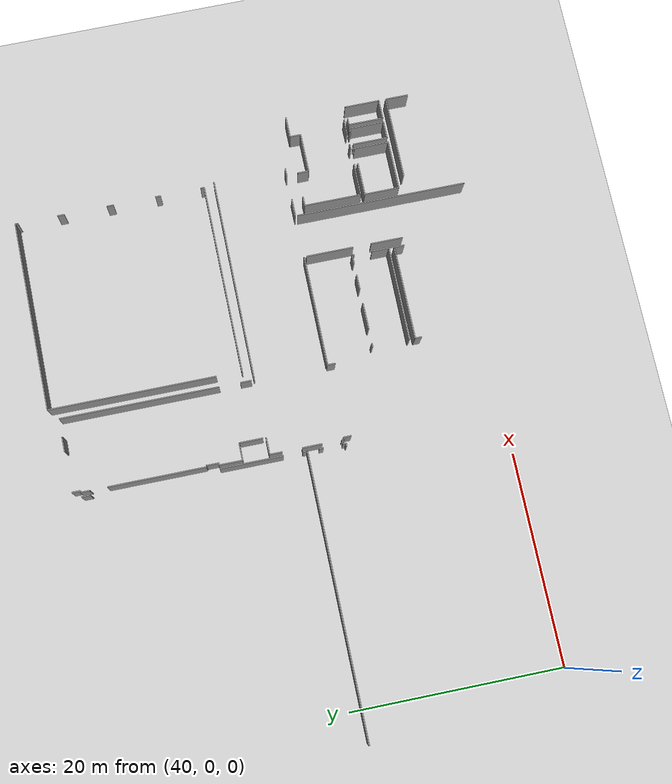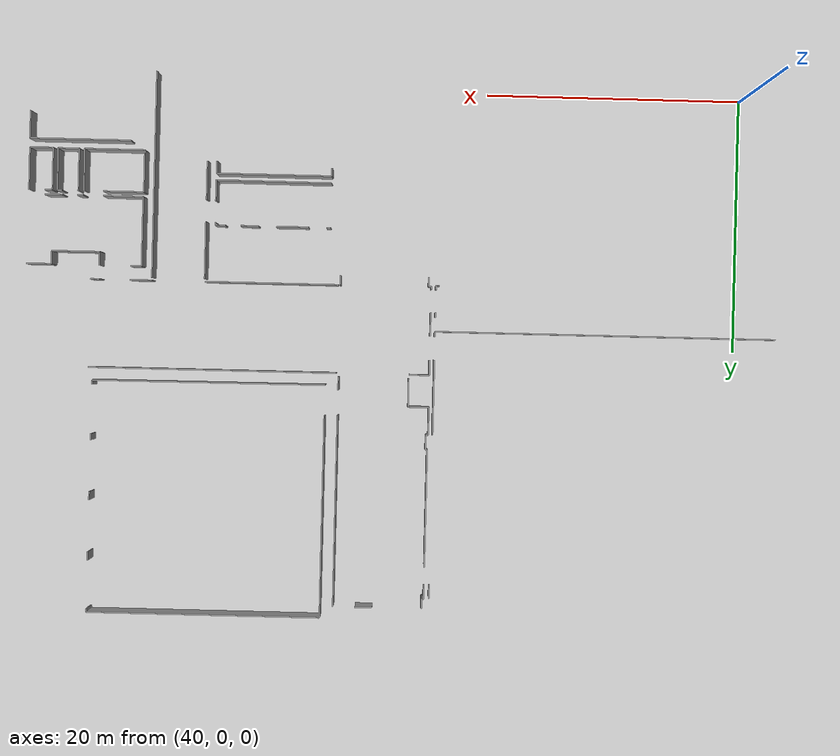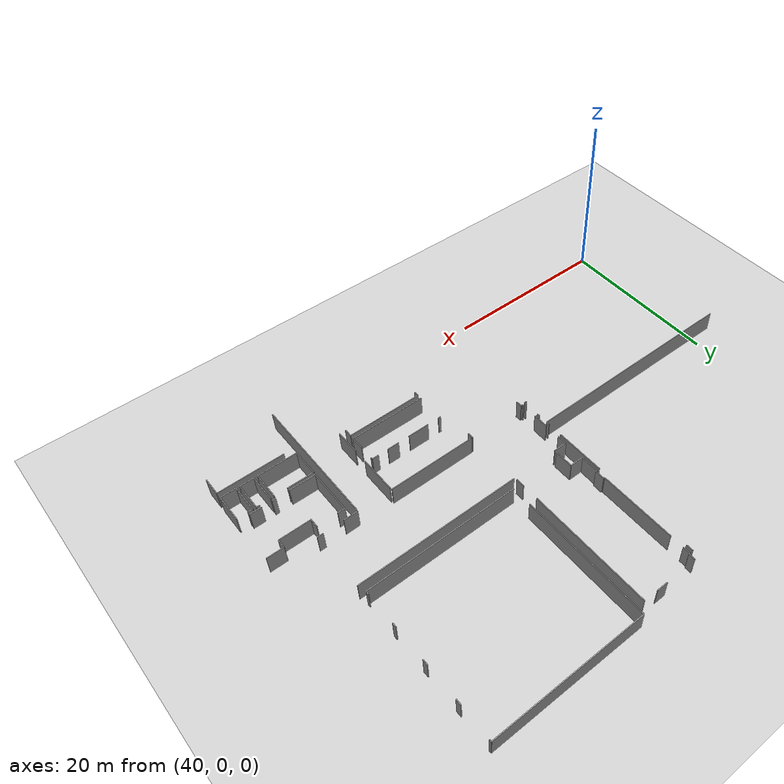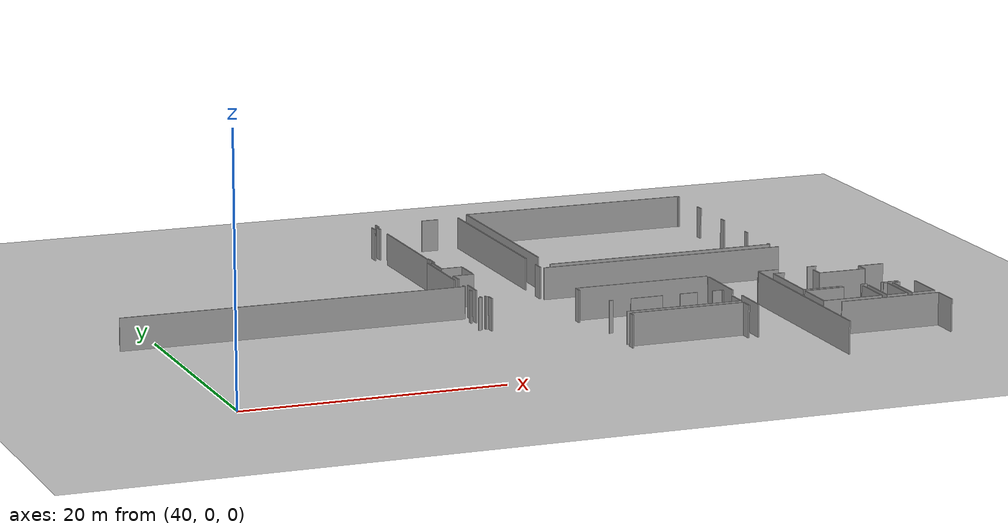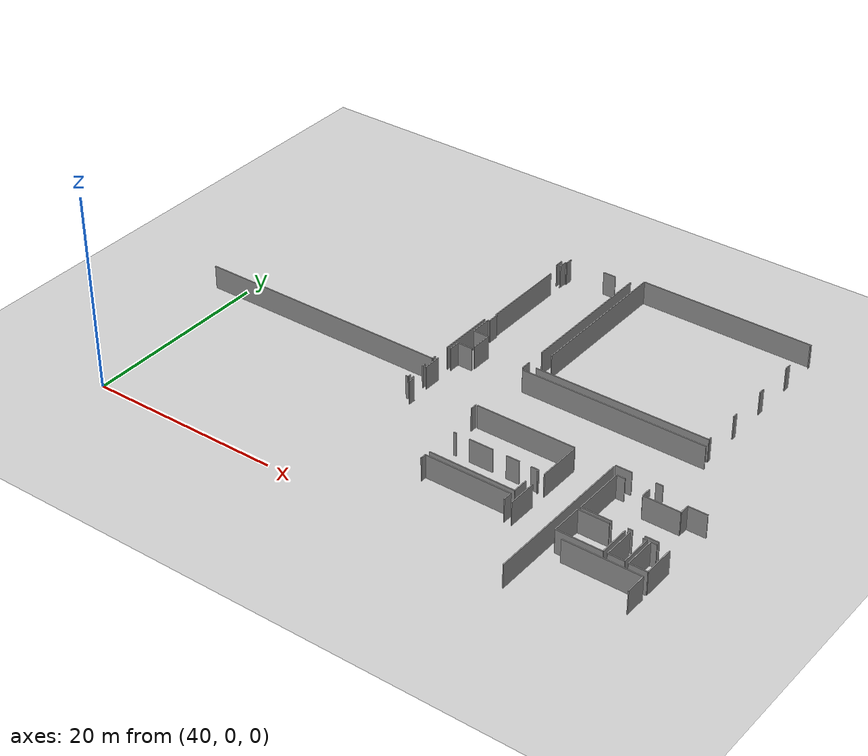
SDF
<sdf version="1.6">
 <world name="default">
  <model name="ground_plane">
   <static>1</static>
   <link name="link">
    <collision name="collision">
     <geometry><plane><normal>0 0 1</normal><size>100 100</size></plane></geometry>
     <surface><friction><ode><mu>100</mu><mu2>50</mu2></ode></friction></surface>
    </collision>
    <visual name="visual">
     <cast_shadows>0</cast_shadows>
     <geometry><plane><normal>0 0 1</normal><size>100 100</size></plane></geometry>
     <material>
      <script><uri>file://media/materials/scripts/gazebo.material</uri><name>Gazebo/Grey</name></script>
     </material>
    </visual>
   </link>
  </model>
  <model name="0510035741_A_40_1_104">
   <static>1</static>
   <link name="Wall_235">
    <collision name="Wall_235_Collision">
     <geometry><box><size>0.404112242112 0.1 2.5</size></box></geometry>
     <pose>0.202056121056 0 1.25 0 0 0</pose>
    </collision>
    <visual name="Wall_235_Visual">
     <pose>0.202056121056 0 1.25 0 0 0</pose>
     <geometry><box><size>0.404112242112 0.1 2.5</size></box></geometry>
     <material>
      <script><uri>file://media/materials/scripts/gazebo.material</uri><name>Gazebo/Grey</name></script>
      <ambient>1 1 1 1</ambient>
     </material>
    </visual>
    <pose>157.739155835 -31.8608594053 0 0 0 -1.57079632679</pose>
   </link>
   <link name="Wall_236">
    <collision name="Wall_236_Collision">
     <geometry><box><size>0.32638858021 0.1 2.5</size></box></geometry>
     <pose>0.163194290105 0 1.25 0 0 0</pose>
    </collision>
    <visual name="Wall_236_Visual">
     <pose>0.163194290105 0 1.25 0 0 0</pose>
     <geometry><box><size>0.32638858021 0.1 2.5</size></box></geometry>
     <material>
      <script><uri>file://media/materials/scripts/gazebo.material</uri><name>Gazebo/Grey</name></script>
      <ambient>1 1 1 1</ambient>
     </material>
    </visual>
    <pose>157.739155835 -34.0533778678 0 0 0 -1.57079632679</pose>
   </link>
   <link name="Wall_237">
    <collision name="Wall_237_Collision">
     <geometry><box><size>0.258062877426 0.1 2.5</size></box></geometry>
     <pose>0.129031438713 0 1.25 0 0 0</pose>
    </collision>
    <visual name="Wall_237_Visual">
     <pose>0.129031438713 0 1.25 0 0 0</pose>
     <geometry><box><size>0.258062877426 0.1 2.5</size></box></geometry>
     <material>
      <script><uri>file://media/materials/scripts/gazebo.material</uri><name>Gazebo/Grey</name></script>
      <ambient>1 1 1 1</ambient>
     </material>
    </visual>
    <pose>157.739155835 -34.379766448 0 0 0 3.14159265359</pose>
   </link>
   <link name="Wall_258">
    <collision name="Wall_258_Collision">
     <geometry><box><size>0.840228345007 0.1 2.5</size></box></geometry>
     <pose>0.420114172503 0 1.25 0 0 0</pose>
    </collision>
    <visual name="Wall_258_Visual">
     <pose>0.420114172503 0 1.25 0 0 0</pose>
     <geometry><box><size>0.840228345007 0.1 2.5</size></box></geometry>
     <material>
      <script><uri>file://media/materials/scripts/gazebo.material</uri><name>Gazebo/Grey</name></script>
      <ambient>1 1 1 1</ambient>
     </material>
    </visual>
    <pose>157.719089922 -9.71748972892 0 0 0 -1.57079632679</pose>
   </link>
   <link name="Wall_263">
    <collision name="Wall_263_Collision">
     <geometry><box><size>5.93468418412 0.1 2.5</size></box></geometry>
     <pose>2.96734209206 0 1.25 0 0 0</pose>
    </collision>
    <visual name="Wall_263_Visual">
     <pose>2.96734209206 0 1.25 0 0 0</pose>
     <geometry><box><size>5.93468418412 0.1 2.5</size></box></geometry>
     <material>
      <script><uri>file://media/materials/scripts/gazebo.material</uri><name>Gazebo/Grey</name></script>
      <ambient>1 1 1 1</ambient>
     </material>
    </visual>
    <pose>157.750077787 -22.568055829 0 0 0 -1.57079632679</pose>
   </link>
   <link name="Wall_264">
    <collision name="Wall_264_Collision">
     <geometry><box><size>0.421130168084 0.1 2.5</size></box></geometry>
     <pose>0.210565084042 0 1.25 0 0 0</pose>
    </collision>
    <visual name="Wall_264_Visual">
     <pose>0.210565084042 0 1.25 0 0 0</pose>
     <geometry><box><size>0.421130168084 0.1 2.5</size></box></geometry>
     <material>
      <script><uri>file://media/materials/scripts/gazebo.material</uri><name>Gazebo/Grey</name></script>
      <ambient>1 1 1 1</ambient>
     </material>
    </visual>
    <pose>157.750077787 -30.3267060788 0 0 0 -1.57079632679</pose>
   </link>
   <link name="Wall_265">
    <collision name="Wall_265_Collision">
     <geometry><box><size>26.7689435551 0.1 2.5</size></box></geometry>
     <pose>13.3844717775 0 1.25 0 0 0</pose>
    </collision>
    <visual name="Wall_265_Visual">
     <pose>13.3844717775 0 1.25 0 0 0</pose>
     <geometry><box><size>26.7689435551 0.1 2.5</size></box></geometry>
     <material>
      <script><uri>file://media/materials/scripts/gazebo.material</uri><name>Gazebo/Grey</name></script>
      <ambient>1 1 1 1</ambient>
     </material>
    </visual>
    <pose>157.750077787 -30.7478362469 0 0 0 3.14159265359</pose>
   </link>
   <link name="Wall_283">
    <collision name="Wall_283_Collision">
     <geometry><box><size>0.710688908503 0.1 2.5</size></box></geometry>
     <pose>0.355344454252 0 1.25 0 0 0</pose>
    </collision>
    <visual name="Wall_283_Visual">
     <pose>0.355344454252 0 1.25 0 0 0</pose>
     <geometry><box><size>0.710688908503 0.1 2.5</size></box></geometry>
     <material>
      <script><uri>file://media/materials/scripts/gazebo.material</uri><name>Gazebo/Grey</name></script>
      <ambient>1 1 1 1</ambient>
     </material>
    </visual>
    <pose>158.326147281 -34.9944437742 0 0 0 1.57079632679</pose>
   </link>
   <link name="Wall_284">
    <collision name="Wall_284_Collision">
     <geometry><box><size>0.204469110559 0.1 2.5</size></box></geometry>
     <pose>0.10223455528 0 1.25 0 0 0</pose>
    </collision>
    <visual name="Wall_284_Visual">
     <pose>0.10223455528 0 1.25 0 0 0</pose>
     <geometry><box><size>0.204469110559 0.1 2.5</size></box></geometry>
     <material>
      <script><uri>file://media/materials/scripts/gazebo.material</uri><name>Gazebo/Grey</name></script>
      <ambient>1 1 1 1</ambient>
     </material>
    </visual>
    <pose>158.326147281 -34.2837548657 0 0 0 3.14159265359</pose>
   </link>
   <link name="Wall_285">
    <collision name="Wall_285_Collision">
     <geometry><box><size>0.226567014433 0.1 2.5</size></box></geometry>
     <pose>0.113283507217 0 1.25 0 0 0</pose>
    </collision>
    <visual name="Wall_285_Visual">
     <pose>0.113283507217 0 1.25 0 0 0</pose>
     <geometry><box><size>0.226567014433 0.1 2.5</size></box></geometry>
     <material>
      <script><uri>file://media/materials/scripts/gazebo.material</uri><name>Gazebo/Grey</name></script>
      <ambient>1 1 1 1</ambient>
     </material>
    </visual>
    <pose>158.121678171 -34.2837548657 0 0 0 1.57079632679</pose>
   </link>
   <link name="Wall_286">
    <collision name="Wall_286_Collision">
     <geometry><box><size>1.87349585029 0.1 2.5</size></box></geometry>
     <pose>0.936747925147 0 1.25 0 0 0</pose>
    </collision>
    <visual name="Wall_286_Visual">
     <pose>0.936747925147 0 1.25 0 0 0</pose>
     <geometry><box><size>1.87349585029 0.1 2.5</size></box></geometry>
     <material>
      <script><uri>file://media/materials/scripts/gazebo.material</uri><name>Gazebo/Grey</name></script>
      <ambient>1 1 1 1</ambient>
     </material>
    </visual>
    <pose>158.121678171 -32.2291578032 0 0 0 1.57079632679</pose>
   </link>
   <link name="Wall_287">
    <collision name="Wall_287_Collision">
     <geometry><box><size>1.18769883351 0.1 2.5</size></box></geometry>
     <pose>0.593849416755 0 1.25 0 0 0</pose>
    </collision>
    <visual name="Wall_287_Visual">
     <pose>0.593849416755 0 1.25 0 0 0</pose>
     <geometry><box><size>1.18769883351 0.1 2.5</size></box></geometry>
     <material>
      <script><uri>file://media/materials/scripts/gazebo.material</uri><name>Gazebo/Grey</name></script>
      <ambient>1 1 1 1</ambient>
     </material>
    </visual>
    <pose>158.121678171 -28.4791181158 0 0 0 1.57079632679</pose>
   </link>
   <link name="Wall_288">
    <collision name="Wall_288_Collision">
     <geometry><box><size>1.60578101485 0.1 2.5</size></box></geometry>
     <pose>0.802890507426 0 1.25 0 0 0</pose>
    </collision>
    <visual name="Wall_288_Visual">
     <pose>0.802890507426 0 1.25 0 0 0</pose>
     <geometry><box><size>1.60578101485 0.1 2.5</size></box></geometry>
     <material>
      <script><uri>file://media/materials/scripts/gazebo.material</uri><name>Gazebo/Grey</name></script>
      <ambient>1 1 1 1</ambient>
     </material>
    </visual>
    <pose>158.121678171 -27.2914192823 0 0 0 0.0</pose>
   </link>
   <link name="Wall_289">
    <collision name="Wall_289_Collision">
     <geometry><box><size>0.768092658797 0.1 2.5</size></box></geometry>
     <pose>0.384046329398 0 1.25 0 0 0</pose>
    </collision>
    <visual name="Wall_289_Visual">
     <pose>0.384046329398 0 1.25 0 0 0</pose>
     <geometry><box><size>0.768092658797 0.1 2.5</size></box></geometry>
     <material>
      <script><uri>file://media/materials/scripts/gazebo.material</uri><name>Gazebo/Grey</name></script>
      <ambient>1 1 1 1</ambient>
     </material>
    </visual>
    <pose>165.299940945 -34.2070471993 0 0 0 -1.57079632679</pose>
   </link>
   <link name="Wall_290">
    <collision name="Wall_290_Collision">
     <geometry><box><size>2.22477632222 0.1 2.5</size></box></geometry>
     <pose>1.11238816111 0 1.25 0 0 0</pose>
    </collision>
    <visual name="Wall_290_Visual">
     <pose>1.11238816111 0 1.25 0 0 0</pose>
     <geometry><box><size>2.22477632222 0.1 2.5</size></box></geometry>
     <material>
      <script><uri>file://media/materials/scripts/gazebo.material</uri><name>Gazebo/Grey</name></script>
      <ambient>1 1 1 1</ambient>
     </material>
    </visual>
    <pose>159.734063157 -26.989414596 0 0 0 1.57079632679</pose>
   </link>
   <link name="Wall_291">
    <collision name="Wall_291_Collision">
     <geometry><box><size>1.64769083254 0.1 2.5</size></box></geometry>
     <pose>0.823845416272 0 1.25 0 0 0</pose>
    </collision>
    <visual name="Wall_291_Visual">
     <pose>0.823845416272 0 1.25 0 0 0</pose>
     <geometry><box><size>1.64769083254 0.1 2.5</size></box></geometry>
     <material>
      <script><uri>file://media/materials/scripts/gazebo.material</uri><name>Gazebo/Grey</name></script>
      <ambient>1 1 1 1</ambient>
     </material>
    </visual>
    <pose>159.734063157 -24.7646382738 0 0 0 3.14159265359</pose>
   </link>
   <link name="Wall_292">
    <collision name="Wall_292_Collision">
     <geometry><box><size>2.19302646033 0.1 2.5</size></box></geometry>
     <pose>1.09651323017 0 1.25 0 0 0</pose>
    </collision>
    <visual name="Wall_292_Visual">
     <pose>1.09651323017 0 1.25 0 0 0</pose>
     <geometry><box><size>2.19302646033 0.1 2.5</size></box></geometry>
     <material>
      <script><uri>file://media/materials/scripts/gazebo.material</uri><name>Gazebo/Grey</name></script>
      <ambient>1 1 1 1</ambient>
     </material>
    </visual>
    <pose>158.086372324 -24.7646382738 0 0 0 1.57079632679</pose>
   </link>
   <link name="Wall_293">
    <collision name="Wall_293_Collision">
     <geometry><box><size>0.188975177958 0.1 2.5</size></box></geometry>
     <pose>0.094487588979 0 1.25 0 0 0</pose>
    </collision>
    <visual name="Wall_293_Visual">
     <pose>0.094487588979 0 1.25 0 0 0</pose>
     <geometry><box><size>0.188975177958 0.1 2.5</size></box></geometry>
     <material>
      <script><uri>file://media/materials/scripts/gazebo.material</uri><name>Gazebo/Grey</name></script>
      <ambient>1 1 1 1</ambient>
     </material>
    </visual>
    <pose>158.086372324 -22.5716118135 0 0 0 0.0</pose>
   </link>
   <link name="Wall_294">
    <collision name="Wall_294_Collision">
     <geometry><box><size>1.16179094621 0.1 2.5</size></box></geometry>
     <pose>0.580895473105 0 1.25 0 0 0</pose>
    </collision>
    <visual name="Wall_294_Visual">
     <pose>0.580895473105 0 1.25 0 0 0</pose>
     <geometry><box><size>1.16179094621 0.1 2.5</size></box></geometry>
     <material>
      <script><uri>file://media/materials/scripts/gazebo.material</uri><name>Gazebo/Grey</name></script>
      <ambient>1 1 1 1</ambient>
     </material>
    </visual>
    <pose>158.275347502 -22.5716118135 0 0 0 1.57079632679</pose>
   </link>
   <link name="Wall_295">
    <collision name="Wall_295_Collision">
     <geometry><box><size>0.130809430979 0.1 2.5</size></box></geometry>
     <pose>0.0654047154895 0 1.25 0 0 0</pose>
    </collision>
    <visual name="Wall_295_Visual">
     <pose>0.0654047154895 0 1.25 0 0 0</pose>
     <geometry><box><size>0.130809430979 0.1 2.5</size></box></geometry>
     <material>
      <script><uri>file://media/materials/scripts/gazebo.material</uri><name>Gazebo/Grey</name></script>
      <ambient>1 1 1 1</ambient>
     </material>
    </visual>
    <pose>158.275347502 -21.4098208673 0 0 0 3.14159265359</pose>
   </link>
   <link name="Wall_296">
    <collision name="Wall_296_Collision">
     <geometry><box><size>9.20720594865 0.1 2.5</size></box></geometry>
     <pose>4.60360297433 0 1.25 0 0 0</pose>
    </collision>
    <visual name="Wall_296_Visual">
     <pose>4.60360297433 0 1.25 0 0 0</pose>
     <geometry><box><size>9.20720594865 0.1 2.5</size></box></geometry>
     <material>
      <script><uri>file://media/materials/scripts/gazebo.material</uri><name>Gazebo/Grey</name></script>
      <ambient>1 1 1 1</ambient>
     </material>
    </visual>
    <pose>158.144538071 -21.4098208673 0 0 0 1.57079632679</pose>
   </link>
   <link name="Wall_297">
    <collision name="Wall_297_Collision">
     <geometry><box><size>0.883408157175 0.1 2.5</size></box></geometry>
     <pose>0.441704078587 0 1.25 0 0 0</pose>
    </collision>
    <visual name="Wall_297_Visual">
     <pose>0.441704078587 0 1.25 0 0 0</pose>
     <geometry><box><size>0.883408157175 0.1 2.5</size></box></geometry>
     <material>
      <script><uri>file://media/materials/scripts/gazebo.material</uri><name>Gazebo/Grey</name></script>
      <ambient>1 1 1 1</ambient>
     </material>
    </visual>
    <pose>158.144538071 -10.5787999822 0 0 0 1.57079632679</pose>
   </link>
   <link name="Wall_298">
    <collision name="Wall_298_Collision">
     <geometry><box><size>0.150367345902 0.1 2.5</size></box></geometry>
     <pose>0.075183672951 0 1.25 0 0 0</pose>
    </collision>
    <visual name="Wall_298_Visual">
     <pose>0.075183672951 0 1.25 0 0 0</pose>
     <geometry><box><size>0.150367345902 0.1 2.5</size></box></geometry>
     <material>
      <script><uri>file://media/materials/scripts/gazebo.material</uri><name>Gazebo/Grey</name></script>
      <ambient>1 1 1 1</ambient>
     </material>
    </visual>
    <pose>158.144538071 -9.69539182505 0 0 0 0.0</pose>
   </link>
   <link name="Wall_299">
    <collision name="Wall_299_Collision">
     <geometry><box><size>0.766314666531 0.1 2.5</size></box></geometry>
     <pose>0.383157333266 0 1.25 0 0 0</pose>
    </collision>
    <visual name="Wall_299_Visual">
     <pose>0.383157333266 0 1.25 0 0 0</pose>
     <geometry><box><size>0.766314666531 0.1 2.5</size></box></geometry>
     <material>
      <script><uri>file://media/materials/scripts/gazebo.material</uri><name>Gazebo/Grey</name></script>
      <ambient>1 1 1 1</ambient>
     </material>
    </visual>
    <pose>158.294905417 -9.69539182505 0 0 0 1.57079632679</pose>
   </link>
   <link name="Wall_300">
    <collision name="Wall_300_Collision">
     <geometry><box><size>1.36168807666 0.1 2.5</size></box></geometry>
     <pose>0.680844038328 0 1.25 0 0 0</pose>
    </collision>
    <visual name="Wall_300_Visual">
     <pose>0.680844038328 0 1.25 0 0 0</pose>
     <geometry><box><size>1.36168807666 0.1 2.5</size></box></geometry>
     <material>
      <script><uri>file://media/materials/scripts/gazebo.material</uri><name>Gazebo/Grey</name></script>
      <ambient>1 1 1 1</ambient>
     </material>
    </visual>
    <pose>162.171182555 -8.92907715851 0 0 0 0.0</pose>
   </link>
   <link name="Wall_301">
    <collision name="Wall_301_Collision">
     <geometry><box><size>15.0352105968 0.1 2.5</size></box></geometry>
     <pose>7.51760529842 0 1.25 0 0 0</pose>
    </collision>
    <visual name="Wall_301_Visual">
     <pose>7.51760529842 0 1.25 0 0 0</pose>
     <geometry><box><size>15.0352105968 0.1 2.5</size></box></geometry>
     <material>
      <script><uri>file://media/materials/scripts/gazebo.material</uri><name>Gazebo/Grey</name></script>
      <ambient>1 1 1 1</ambient>
     </material>
    </visual>
    <pose>165.267937084 -8.92907715851 0 0 0 -1.57079632679</pose>
   </link>
   <link name="Wall_302">
    <collision name="Wall_302_Collision">
     <geometry><box><size>1.03809348429 0.1 2.5</size></box></geometry>
     <pose>0.519046742147 0 1.25 0 0 0</pose>
    </collision>
    <visual name="Wall_302_Visual">
     <pose>0.519046742147 0 1.25 0 0 0</pose>
     <geometry><box><size>1.03809348429 0.1 2.5</size></box></geometry>
     <material>
      <script><uri>file://media/materials/scripts/gazebo.material</uri><name>Gazebo/Grey</name></script>
      <ambient>1 1 1 1</ambient>
     </material>
    </visual>
    <pose>165.267937084 -25.9734190156 0 0 0 -1.57079632679</pose>
   </link>
   <link name="Wall_303">
    <collision name="Wall_303_Collision">
     <geometry><box><size>15.8609610048 0.1 2.5</size></box></geometry>
     <pose>7.93048050241 0 1.25 0 0 0</pose>
    </collision>
    <visual name="Wall_303_Visual">
     <pose>7.93048050241 0 1.25 0 0 0</pose>
     <geometry><box><size>15.8609610048 0.1 2.5</size></box></geometry>
     <material>
      <script><uri>file://media/materials/scripts/gazebo.material</uri><name>Gazebo/Grey</name></script>
      <ambient>1 1 1 1</ambient>
     </material>
    </visual>
    <pose>166.29663261 -23.8893580813 0 0 0 1.57079632679</pose>
   </link>
   <link name="Wall_304">
    <collision name="Wall_304_Collision">
     <geometry><box><size>18.3389742255 0.1 2.5</size></box></geometry>
     <pose>9.16948711273 0 1.25 0 0 0</pose>
    </collision>
    <visual name="Wall_304_Visual">
     <pose>9.16948711273 0 1.25 0 0 0</pose>
     <geometry><box><size>18.3389742255 0.1 2.5</size></box></geometry>
     <material>
      <script><uri>file://media/materials/scripts/gazebo.material</uri><name>Gazebo/Grey</name></script>
      <ambient>1 1 1 1</ambient>
     </material>
    </visual>
    <pose>166.29663261 -8.02839707647 0 0 0 0.0</pose>
   </link>
   <link name="Wall_305">
    <collision name="Wall_305_Collision">
     <geometry><box><size>0.253490897315 0.1 2.5</size></box></geometry>
     <pose>0.126745448657 0 1.25 0 0 0</pose>
    </collision>
    <visual name="Wall_305_Visual">
     <pose>0.126745448657 0 1.25 0 0 0</pose>
     <geometry><box><size>0.253490897315 0.1 2.5</size></box></geometry>
     <material>
      <script><uri>file://media/materials/scripts/gazebo.material</uri><name>Gazebo/Grey</name></script>
      <ambient>1 1 1 1</ambient>
     </material>
    </visual>
    <pose>184.635606835 -8.02839707647 0 0 0 -1.57079632679</pose>
   </link>
   <link name="Wall_306">
    <collision name="Wall_306_Collision">
     <geometry><box><size>0.684781021203 0.1 2.5</size></box></geometry>
     <pose>0.342390510601 0 1.25 0 0 0</pose>
    </collision>
    <visual name="Wall_306_Visual">
     <pose>0.342390510601 0 1.25 0 0 0</pose>
     <geometry><box><size>0.684781021203 0.1 2.5</size></box></geometry>
     <material>
      <script><uri>file://media/materials/scripts/gazebo.material</uri><name>Gazebo/Grey</name></script>
      <ambient>1 1 1 1</ambient>
     </material>
    </visual>
    <pose>184.635606835 -12.080695449 0 0 0 -1.57079632679</pose>
   </link>
   <link name="Wall_307">
    <collision name="Wall_307_Collision">
     <geometry><box><size>0.662429118433 0.1 2.5</size></box></geometry>
     <pose>0.331214559217 0 1.25 0 0 0</pose>
    </collision>
    <visual name="Wall_307_Visual">
     <pose>0.331214559217 0 1.25 0 0 0</pose>
     <geometry><box><size>0.662429118433 0.1 2.5</size></box></geometry>
     <material>
      <script><uri>file://media/materials/scripts/gazebo.material</uri><name>Gazebo/Grey</name></script>
      <ambient>1 1 1 1</ambient>
     </material>
    </visual>
    <pose>184.635606835 -16.8294587919 0 0 0 -1.57079632679</pose>
   </link>
   <link name="Wall_308">
    <collision name="Wall_308_Collision">
     <geometry><box><size>0.50799779021 0.1 2.5</size></box></geometry>
     <pose>0.253998895105 0 1.25 0 0 0</pose>
    </collision>
    <visual name="Wall_308_Visual">
     <pose>0.253998895105 0 1.25 0 0 0</pose>
     <geometry><box><size>0.50799779021 0.1 2.5</size></box></geometry>
     <material>
      <script><uri>file://media/materials/scripts/gazebo.material</uri><name>Gazebo/Grey</name></script>
      <ambient>1 1 1 1</ambient>
     </material>
    </visual>
    <pose>184.635606835 -21.555870232 0 0 0 -1.57079632679</pose>
   </link>
   <link name="Wall_309">
    <collision name="Wall_309_Collision">
     <geometry><box><size>0.353312463091 0.1 2.5</size></box></geometry>
     <pose>0.176656231545 0 1.25 0 0 0</pose>
    </collision>
    <visual name="Wall_309_Visual">
     <pose>0.176656231545 0 1.25 0 0 0</pose>
     <geometry><box><size>0.353312463091 0.1 2.5</size></box></geometry>
     <material>
      <script><uri>file://media/materials/scripts/gazebo.material</uri><name>Gazebo/Grey</name></script>
      <ambient>1 1 1 1</ambient>
     </material>
    </visual>
    <pose>184.635606835 -25.9292232079 0 0 0 -1.57079632679</pose>
   </link>
   <link name="Wall_310">
    <collision name="Wall_310_Collision">
     <geometry><box><size>18.3390424892 0.1 2.5</size></box></geometry>
     <pose>9.16952124462 0 1.25 0 0 0</pose>
    </collision>
    <visual name="Wall_310_Visual">
     <pose>9.16952124462 0 1.25 0 0 0</pose>
     <geometry><box><size>18.3390424892 0.1 2.5</size></box></geometry>
     <material>
      <script><uri>file://media/materials/scripts/gazebo.material</uri><name>Gazebo/Grey</name></script>
      <ambient>1 1 1 1</ambient>
     </material>
    </visual>
    <pose>184.635606835 -26.282535671 0 0 0 -3.1388641663</pose>
   </link>
   <link name="Wall_311">
    <collision name="Wall_311_Collision">
     <geometry><box><size>19.5038131584 0.1 2.5</size></box></geometry>
     <pose>9.75190657921 0 1.25 0 0 0</pose>
    </collision>
    <visual name="Wall_311_Visual">
     <pose>9.75190657921 0 1.25 0 0 0</pose>
     <geometry><box><size>19.5038131584 0.1 2.5</size></box></geometry>
     <material>
      <script><uri>file://media/materials/scripts/gazebo.material</uri><name>Gazebo/Grey</name></script>
      <ambient>1 1 1 1</ambient>
     </material>
    </visual>
    <pose>165.449292296 -27.2914192823 0 0 0 0.0</pose>
   </link>
   <link name="Wall_312">
    <collision name="Wall_312_Collision">
     <geometry><box><size>0.729738825636 0.1 2.5</size></box></geometry>
     <pose>0.364869412818 0 1.25 0 0 0</pose>
    </collision>
    <visual name="Wall_312_Visual">
     <pose>0.364869412818 0 1.25 0 0 0</pose>
     <geometry><box><size>0.729738825636 0.1 2.5</size></box></geometry>
     <material>
      <script><uri>file://media/materials/scripts/gazebo.material</uri><name>Gazebo/Grey</name></script>
      <ambient>1 1 1 1</ambient>
     </material>
    </visual>
    <pose>184.953105454 -34.2352410767 0 0 0 3.14159265359</pose>
   </link>
   <link name="Wall_313">
    <collision name="Wall_313_Collision">
     <geometry><box><size>1.70484058394 0.1 2.5</size></box></geometry>
     <pose>0.852420291972 0 1.25 0 0 0</pose>
    </collision>
    <visual name="Wall_313_Visual">
     <pose>0.852420291972 0 1.25 0 0 0</pose>
     <geometry><box><size>1.70484058394 0.1 2.5</size></box></geometry>
     <material>
      <script><uri>file://media/materials/scripts/gazebo.material</uri><name>Gazebo/Grey</name></script>
      <ambient>1 1 1 1</ambient>
     </material>
    </visual>
    <pose>181.833999022 -34.2352410767 0 0 0 3.14159265359</pose>
   </link>
   <link name="Wall_314">
    <collision name="Wall_314_Collision">
     <geometry><box><size>10.4744066334 0.1 2.5</size></box></geometry>
     <pose>5.23720331672 0 1.25 0 0 0</pose>
    </collision>
    <visual name="Wall_314_Visual">
     <pose>5.23720331672 0 1.25 0 0 0</pose>
     <geometry><box><size>10.4744066334 0.1 2.5</size></box></geometry>
     <material>
      <script><uri>file://media/materials/scripts/gazebo.material</uri><name>Gazebo/Grey</name></script>
      <ambient>1 1 1 1</ambient>
     </material>
    </visual>
    <pose>175.923698732 -34.2352410767 0 0 0 3.14139865776</pose>
   </link>
   <link name="Wall_459">
    <collision name="Wall_459_Collision">
     <geometry><box><size>3.04976473352 0.1 2.5</size></box></geometry>
     <pose>1.52488236676 0 1.25 0 0 0</pose>
    </collision>
    <visual name="Wall_459_Visual">
     <pose>1.52488236676 0 1.25 0 0 0</pose>
     <geometry><box><size>3.04976473352 0.1 2.5</size></box></geometry>
     <material>
      <script><uri>file://media/materials/scripts/gazebo.material</uri><name>Gazebo/Grey</name></script>
      <ambient>1 1 1 1</ambient>
     </material>
    </visual>
    <pose>175.975514507 -43.7462297039 0 0 0 1.57079632679</pose>
   </link>
   <link name="Wall_460">
    <collision name="Wall_460_Collision">
     <geometry><box><size>4.50797239032 0.1 2.5</size></box></geometry>
     <pose>2.25398619516 0 1.25 0 0 0</pose>
    </collision>
    <visual name="Wall_460_Visual">
     <pose>2.25398619516 0 1.25 0 0 0</pose>
     <geometry><box><size>4.50797239032 0.1 2.5</size></box></geometry>
     <material>
      <script><uri>file://media/materials/scripts/gazebo.material</uri><name>Gazebo/Grey</name></script>
      <ambient>1 1 1 1</ambient>
     </material>
    </visual>
    <pose>175.975514507 -38.9603825223 0 0 0 1.57079632679</pose>
   </link>
   <link name="Wall_461">
    <collision name="Wall_461_Collision">
     <geometry><box><size>16.2516113055 0.1 2.5</size></box></geometry>
     <pose>8.12580565275 0 1.25 0 0 0</pose>
    </collision>
    <visual name="Wall_461_Visual">
     <pose>8.12580565275 0 1.25 0 0 0</pose>
     <geometry><box><size>16.2516113055 0.1 2.5</size></box></geometry>
     <material>
      <script><uri>file://media/materials/scripts/gazebo.material</uri><name>Gazebo/Grey</name></script>
      <ambient>1 1 1 1</ambient>
     </material>
    </visual>
    <pose>180.115696497 -34.452410132 0 0 0 -1.57079632679</pose>
   </link>
   <link name="Wall_469">
    <collision name="Wall_469_Collision">
     <geometry><box><size>0.327658574685 0.1 2.5</size></box></geometry>
     <pose>0.163829287343 0 1.25 0 0 0</pose>
    </collision>
    <visual name="Wall_469_Visual">
     <pose>0.163829287343 0 1.25 0 0 0</pose>
     <geometry><box><size>0.327658574685 0.1 2.5</size></box></geometry>
     <material>
      <script><uri>file://media/materials/scripts/gazebo.material</uri><name>Gazebo/Grey</name></script>
      <ambient>1 1 1 1</ambient>
     </material>
    </visual>
    <pose>166.152869235 -38.7061296283 0 0 0 0.0</pose>
   </link>
   <link name="Wall_470">
    <collision name="Wall_470_Collision">
     <geometry><box><size>2.53846495768 0.1 2.5</size></box></geometry>
     <pose>1.26923247884 0 1.25 0 0 0</pose>
    </collision>
    <visual name="Wall_470_Visual">
     <pose>1.26923247884 0 1.25 0 0 0</pose>
     <geometry><box><size>2.53846495768 0.1 2.5</size></box></geometry>
     <material>
      <script><uri>file://media/materials/scripts/gazebo.material</uri><name>Gazebo/Grey</name></script>
      <ambient>1 1 1 1</ambient>
     </material>
    </visual>
    <pose>167.889967679 -38.7061296283 0 0 0 0.0</pose>
   </link>
   <link name="Wall_471">
    <collision name="Wall_471_Collision">
     <geometry><box><size>1.40283589766 0.1 2.5</size></box></geometry>
     <pose>0.701417948832 0 1.25 0 0 0</pose>
    </collision>
    <visual name="Wall_471_Visual">
     <pose>0.701417948832 0 1.25 0 0 0</pose>
     <geometry><box><size>1.40283589766 0.1 2.5</size></box></geometry>
     <material>
      <script><uri>file://media/materials/scripts/gazebo.material</uri><name>Gazebo/Grey</name></script>
      <ambient>1 1 1 1</ambient>
     </material>
    </visual>
    <pose>171.831268534 -38.7061296283 0 0 0 0.0</pose>
   </link>
   <link name="Wall_472">
    <collision name="Wall_472_Collision">
     <geometry><box><size>0.798826525105 0.1 2.5</size></box></geometry>
     <pose>0.399413262552 0 1.25 0 0 0</pose>
    </collision>
    <visual name="Wall_472_Visual">
     <pose>0.399413262552 0 1.25 0 0 0</pose>
     <geometry><box><size>0.798826525105 0.1 2.5</size></box></geometry>
     <material>
      <script><uri>file://media/materials/scripts/gazebo.material</uri><name>Gazebo/Grey</name></script>
      <ambient>1 1 1 1</ambient>
     </material>
    </visual>
    <pose>174.438821191 -38.7061296283 0 0 0 0.0</pose>
   </link>
   <link name="Wall_473">
    <collision name="Wall_473_Collision">
     <geometry><box><size>0.217677053105 0.1 2.5</size></box></geometry>
     <pose>0.108838526552 0 1.25 0 0 0</pose>
    </collision>
    <visual name="Wall_473_Visual">
     <pose>0.108838526552 0 1.25 0 0 0</pose>
     <geometry><box><size>0.217677053105 0.1 2.5</size></box></geometry>
     <material>
      <script><uri>file://media/materials/scripts/gazebo.material</uri><name>Gazebo/Grey</name></script>
      <ambient>1 1 1 1</ambient>
     </material>
    </visual>
    <pose>175.237647716 -38.7061296283 0 0 0 -1.57079632679</pose>
   </link>
   <link name="Wall_474">
    <collision name="Wall_474_Collision">
     <geometry><box><size>1.63245089884 0.1 2.5</size></box></geometry>
     <pose>0.816225449419 0 1.25 0 0 0</pose>
    </collision>
    <visual name="Wall_474_Visual">
     <pose>0.816225449419 0 1.25 0 0 0</pose>
     <geometry><box><size>1.63245089884 0.1 2.5</size></box></geometry>
     <material>
      <script><uri>file://media/materials/scripts/gazebo.material</uri><name>Gazebo/Grey</name></script>
      <ambient>1 1 1 1</ambient>
     </material>
    </visual>
    <pose>175.237647716 -40.6217892952 0 0 0 -1.57079632679</pose>
   </link>
   <link name="Wall_475">
    <collision name="Wall_475_Collision">
     <geometry><box><size>9.08484907327 0.1 2.5</size></box></geometry>
     <pose>4.54242453664 0 1.25 0 0 0</pose>
    </collision>
    <visual name="Wall_475_Visual">
     <pose>4.54242453664 0 1.25 0 0 0</pose>
     <geometry><box><size>9.08484907327 0.1 2.5</size></box></geometry>
     <material>
      <script><uri>file://media/materials/scripts/gazebo.material</uri><name>Gazebo/Grey</name></script>
      <ambient>1 1 1 1</ambient>
     </material>
    </visual>
    <pose>175.237647716 -42.2542401941 0 0 0 3.13765049267</pose>
   </link>
   <link name="Wall_477">
    <collision name="Wall_477_Collision">
     <geometry><box><size>0.624329284168 0.1 2.5</size></box></geometry>
     <pose>0.312164642084 0 1.25 0 0 0</pose>
    </collision>
    <visual name="Wall_477_Visual">
     <pose>0.312164642084 0 1.25 0 0 0</pose>
     <geometry><box><size>0.624329284168 0.1 2.5</size></box></geometry>
     <material>
      <script><uri>file://media/materials/scripts/gazebo.material</uri><name>Gazebo/Grey</name></script>
      <ambient>1 1 1 1</ambient>
     </material>
    </visual>
    <pose>166.1609972 -43.3967272242 0 0 0 1.57079632679</pose>
   </link>
   <link name="Wall_478">
    <collision name="Wall_478_Collision">
     <geometry><box><size>9.04744064363 0.1 2.5</size></box></geometry>
     <pose>4.52372032182 0 1.25 0 0 0</pose>
    </collision>
    <visual name="Wall_478_Visual">
     <pose>4.52372032182 0 1.25 0 0 0</pose>
     <geometry><box><size>9.04744064363 0.1 2.5</size></box></geometry>
     <material>
      <script><uri>file://media/materials/scripts/gazebo.material</uri><name>Gazebo/Grey</name></script>
      <ambient>1 1 1 1</ambient>
     </material>
    </visual>
    <pose>166.1609972 -42.7723979401 0 0 0 0.0</pose>
   </link>
   <link name="Wall_479">
    <collision name="Wall_479_Collision">
     <geometry><box><size>0.973069767147 0.1 2.5</size></box></geometry>
     <pose>0.486534883573 0 1.25 0 0 0</pose>
    </collision>
    <visual name="Wall_479_Visual">
     <pose>0.486534883573 0 1.25 0 0 0</pose>
     <geometry><box><size>0.973069767147 0.1 2.5</size></box></geometry>
     <material>
      <script><uri>file://media/materials/scripts/gazebo.material</uri><name>Gazebo/Grey</name></script>
      <ambient>1 1 1 1</ambient>
     </material>
    </visual>
    <pose>175.208437843 -42.7723979401 0 0 0 -1.57079632679</pose>
   </link>
   <link name="Wall_576">
    <collision name="Wall_576_Collision">
     <geometry><box><size>7.94356144551 0.1 2.5</size></box></geometry>
     <pose>3.97178072275 0 1.25 0 0 0</pose>
    </collision>
    <visual name="Wall_576_Visual">
     <pose>3.97178072275 0 1.25 0 0 0</pose>
     <geometry><box><size>7.94356144551 0.1 2.5</size></box></geometry>
     <material>
      <script><uri>file://media/materials/scripts/gazebo.material</uri><name>Gazebo/Grey</name></script>
      <ambient>1 1 1 1</ambient>
     </material>
    </visual>
    <pose>182.019672214 -45.1975793905 0 0 0 0.0</pose>
   </link>
   <link name="Wall_577">
    <collision name="Wall_577_Collision">
     <geometry><box><size>2.17854852331 0.1 2.5</size></box></geometry>
     <pose>1.08927426166 0 1.25 0 0 0</pose>
    </collision>
    <visual name="Wall_577_Visual">
     <pose>1.08927426166 0 1.25 0 0 0</pose>
     <geometry><box><size>2.17854852331 0.1 2.5</size></box></geometry>
     <material>
      <script><uri>file://media/materials/scripts/gazebo.material</uri><name>Gazebo/Grey</name></script>
      <ambient>1 1 1 1</ambient>
     </material>
    </visual>
    <pose>189.96323366 -45.1975793905 0 0 0 -1.57079632679</pose>
   </link>
   <link name="Wall_580">
    <collision name="Wall_580_Collision">
     <geometry><box><size>5.46097624475 0.1 2.5</size></box></geometry>
     <pose>2.73048812238 0 1.25 0 0 0</pose>
    </collision>
    <visual name="Wall_580_Visual">
     <pose>2.73048812238 0 1.25 0 0 0</pose>
     <geometry><box><size>5.46097624475 0.1 2.5</size></box></geometry>
     <material>
      <script><uri>file://media/materials/scripts/gazebo.material</uri><name>Gazebo/Grey</name></script>
      <ambient>1 1 1 1</ambient>
     </material>
    </visual>
    <pose>180.949828868 -40.782062598 0 0 0 1.57079632679</pose>
   </link>
   <link name="Wall_581">
    <collision name="Wall_581_Collision">
     <geometry><box><size>0.871470209105 0.1 2.5</size></box></geometry>
     <pose>0.435735104552 0 1.25 0 0 0</pose>
    </collision>
    <visual name="Wall_581_Visual">
     <pose>0.435735104552 0 1.25 0 0 0</pose>
     <geometry><box><size>0.871470209105 0.1 2.5</size></box></geometry>
     <material>
      <script><uri>file://media/materials/scripts/gazebo.material</uri><name>Gazebo/Grey</name></script>
      <ambient>1 1 1 1</ambient>
     </material>
    </visual>
    <pose>180.949828868 -35.3210863533 0 0 0 0.0</pose>
   </link>
   <link name="Wall_582">
    <collision name="Wall_582_Collision">
     <geometry><box><size>1.05612740585 0.1 2.5</size></box></geometry>
     <pose>0.528063702923 0 1.25 0 0 0</pose>
    </collision>
    <visual name="Wall_582_Visual">
     <pose>0.528063702923 0 1.25 0 0 0</pose>
     <geometry><box><size>1.05612740585 0.1 2.5</size></box></geometry>
     <material>
      <script><uri>file://media/materials/scripts/gazebo.material</uri><name>Gazebo/Grey</name></script>
      <ambient>1 1 1 1</ambient>
     </material>
    </visual>
    <pose>184.273404411 -35.3210863533 0 0 0 -1.57079632679</pose>
   </link>
   <link name="Wall_583">
    <collision name="Wall_583_Collision">
     <geometry><box><size>3.76426362545 0.1 2.5</size></box></geometry>
     <pose>1.88213181273 0 1.25 0 0 0</pose>
    </collision>
    <visual name="Wall_583_Visual">
     <pose>1.88213181273 0 1.25 0 0 0</pose>
     <geometry><box><size>3.76426362545 0.1 2.5</size></box></geometry>
     <material>
      <script><uri>file://media/materials/scripts/gazebo.material</uri><name>Gazebo/Grey</name></script>
      <ambient>1 1 1 1</ambient>
     </material>
    </visual>
    <pose>184.273404411 -36.3772137591 0 0 0 0.0</pose>
   </link>
   <link name="Wall_584">
    <collision name="Wall_584_Collision">
     <geometry><box><size>1.03707748871 0.1 2.5</size></box></geometry>
     <pose>0.518538744356 0 1.25 0 0 0</pose>
    </collision>
    <visual name="Wall_584_Visual">
     <pose>0.518538744356 0 1.25 0 0 0</pose>
     <geometry><box><size>1.03707748871 0.1 2.5</size></box></geometry>
     <material>
      <script><uri>file://media/materials/scripts/gazebo.material</uri><name>Gazebo/Grey</name></script>
      <ambient>1 1 1 1</ambient>
     </material>
    </visual>
    <pose>188.037668036 -36.3772137591 0 0 0 1.57079632679</pose>
   </link>
   <link name="Wall_585">
    <collision name="Wall_585_Collision">
     <geometry><box><size>1.9974473111 0.1 2.5</size></box></geometry>
     <pose>0.998723655552 0 1.25 0 0 0</pose>
    </collision>
    <visual name="Wall_585_Visual">
     <pose>0.998723655552 0 1.25 0 0 0</pose>
     <geometry><box><size>1.9974473111 0.1 2.5</size></box></geometry>
     <material>
      <script><uri>file://media/materials/scripts/gazebo.material</uri><name>Gazebo/Grey</name></script>
      <ambient>1 1 1 1</ambient>
     </material>
    </visual>
    <pose>188.037668036 -35.3401362704 0 0 0 0.0</pose>
   </link>
   <link name="Wall_586">
    <collision name="Wall_586_Collision">
     <geometry><box><size>1.40207390098 0.1 2.5</size></box></geometry>
     <pose>0.701036950489 0 1.25 0 0 0</pose>
    </collision>
    <visual name="Wall_586_Visual">
     <pose>0.701036950489 0 1.25 0 0 0</pose>
     <geometry><box><size>1.40207390098 0.1 2.5</size></box></geometry>
     <material>
      <script><uri>file://media/materials/scripts/gazebo.material</uri><name>Gazebo/Grey</name></script>
      <ambient>1 1 1 1</ambient>
     </material>
    </visual>
    <pose>188.710003111 -40.8018745118 0 0 0 3.14159265359</pose>
   </link>
   <link name="Wall_587">
    <collision name="Wall_587_Collision">
     <geometry><box><size>0.477517922797 0.1 2.5</size></box></geometry>
     <pose>0.238758961399 0 1.25 0 0 0</pose>
    </collision>
    <visual name="Wall_587_Visual">
     <pose>0.238758961399 0 1.25 0 0 0</pose>
     <geometry><box><size>0.477517922797 0.1 2.5</size></box></geometry>
     <material>
      <script><uri>file://media/materials/scripts/gazebo.material</uri><name>Gazebo/Grey</name></script>
      <ambient>1 1 1 1</ambient>
     </material>
    </visual>
    <pose>186.126580349 -40.8018745118 0 0 0 3.14159265359</pose>
   </link>
   <link name="Wall_588">
    <collision name="Wall_588_Collision">
     <geometry><box><size>3.13339300433 0.1 2.5</size></box></geometry>
     <pose>1.56669650216 0 1.25 0 0 0</pose>
    </collision>
    <visual name="Wall_588_Visual">
     <pose>1.56669650216 0 1.25 0 0 0</pose>
     <geometry><box><size>3.13339300433 0.1 2.5</size></box></geometry>
     <material>
      <script><uri>file://media/materials/scripts/gazebo.material</uri><name>Gazebo/Grey</name></script>
      <ambient>1 1 1 1</ambient>
     </material>
    </visual>
    <pose>184.083159238 -40.8018745118 0 0 0 3.13526978065</pose>
   </link>
   <link name="Wall_589">
    <collision name="Wall_589_Collision">
     <geometry><box><size>3.30858960764 0.1 2.5</size></box></geometry>
     <pose>1.65429480382 0 1.25 0 0 0</pose>
    </collision>
    <visual name="Wall_589_Visual">
     <pose>1.65429480382 0 1.25 0 0 0</pose>
     <geometry><box><size>3.30858960764 0.1 2.5</size></box></geometry>
     <material>
      <script><uri>file://media/materials/scripts/gazebo.material</uri><name>Gazebo/Grey</name></script>
      <ambient>1 1 1 1</ambient>
     </material>
    </visual>
    <pose>180.911983033 -44.4640305815 0 0 0 1.57079632679</pose>
   </link>
   <link name="Wall_590">
    <collision name="Wall_590_Collision">
     <geometry><box><size>3.16965221201 0.1 2.5</size></box></geometry>
     <pose>1.58482610601 0 1.25 0 0 0</pose>
    </collision>
    <visual name="Wall_590_Visual">
     <pose>1.58482610601 0 1.25 0 0 0</pose>
     <geometry><box><size>3.16965221201 0.1 2.5</size></box></geometry>
     <material>
      <script><uri>file://media/materials/scripts/gazebo.material</uri><name>Gazebo/Grey</name></script>
      <ambient>1 1 1 1</ambient>
     </material>
    </visual>
    <pose>180.911983033 -41.1554409738 0 0 0 0.0</pose>
   </link>
   <link name="Wall_591">
    <collision name="Wall_591_Collision">
     <geometry><box><size>3.31747956896 0.1 2.5</size></box></geometry>
     <pose>1.65873978448 0 1.25 0 0 0</pose>
    </collision>
    <visual name="Wall_591_Visual">
     <pose>1.65873978448 0 1.25 0 0 0</pose>
     <geometry><box><size>3.31747956896 0.1 2.5</size></box></geometry>
     <material>
      <script><uri>file://media/materials/scripts/gazebo.material</uri><name>Gazebo/Grey</name></script>
      <ambient>1 1 1 1</ambient>
     </material>
    </visual>
    <pose>185.626202526 -41.1554409738 0 0 0 -1.57079632679</pose>
   </link>
   <link name="Wall_592">
    <collision name="Wall_592_Collision">
     <geometry><box><size>4.71422787538 0.1 2.5</size></box></geometry>
     <pose>2.35711393769 0 1.25 0 0 0</pose>
    </collision>
    <visual name="Wall_592_Visual">
     <pose>2.35711393769 0 1.25 0 0 0</pose>
     <geometry><box><size>4.71422787538 0.1 2.5</size></box></geometry>
     <material>
      <script><uri>file://media/materials/scripts/gazebo.material</uri><name>Gazebo/Grey</name></script>
      <ambient>1 1 1 1</ambient>
     </material>
    </visual>
    <pose>185.626202526 -44.4729205428 0 0 0 3.13970687996</pose>
   </link>
   <link name="Wall_593">
    <collision name="Wall_593_Collision">
     <geometry><box><size>3.33246550378 0.1 2.5</size></box></geometry>
     <pose>1.66623275189 0 1.25 0 0 0</pose>
    </collision>
    <visual name="Wall_593_Visual">
     <pose>1.66623275189 0 1.25 0 0 0</pose>
     <geometry><box><size>3.33246550378 0.1 2.5</size></box></geometry>
     <material>
      <script><uri>file://media/materials/scripts/gazebo.material</uri><name>Gazebo/Grey</name></script>
      <ambient>1 1 1 1</ambient>
     </material>
    </visual>
    <pose>186.069430598 -44.4653005759 0 0 0 1.57079632679</pose>
   </link>
   <link name="Wall_594">
    <collision name="Wall_594_Collision">
     <geometry><box><size>0.391412297357 0.1 2.5</size></box></geometry>
     <pose>0.195706148678 0 1.25 0 0 0</pose>
    </collision>
    <visual name="Wall_594_Visual">
     <pose>0.195706148678 0 1.25 0 0 0</pose>
     <geometry><box><size>0.391412297357 0.1 2.5</size></box></geometry>
     <material>
      <script><uri>file://media/materials/scripts/gazebo.material</uri><name>Gazebo/Grey</name></script>
      <ambient>1 1 1 1</ambient>
     </material>
    </visual>
    <pose>187.327233127 -41.1328350722 0 0 0 0.0</pose>
   </link>
   <link name="Wall_595">
    <collision name="Wall_595_Collision">
     <geometry><box><size>3.3311955093 0.1 2.5</size></box></geometry>
     <pose>1.66559775465 0 1.25 0 0 0</pose>
    </collision>
    <visual name="Wall_595_Visual">
     <pose>1.66559775465 0 1.25 0 0 0</pose>
     <geometry><box><size>3.3311955093 0.1 2.5</size></box></geometry>
     <material>
      <script><uri>file://media/materials/scripts/gazebo.material</uri><name>Gazebo/Grey</name></script>
      <ambient>1 1 1 1</ambient>
     </material>
    </visual>
    <pose>187.718645424 -41.1328350722 0 0 0 -1.57079632679</pose>
   </link>
   <link name="Wall_596">
    <collision name="Wall_596_Collision">
     <geometry><box><size>1.6492153149 0.1 2.5</size></box></geometry>
     <pose>0.824607657451 0 1.25 0 0 0</pose>
    </collision>
    <visual name="Wall_596_Visual">
     <pose>0.824607657451 0 1.25 0 0 0</pose>
     <geometry><box><size>1.6492153149 0.1 2.5</size></box></geometry>
     <material>
      <script><uri>file://media/materials/scripts/gazebo.material</uri><name>Gazebo/Grey</name></script>
      <ambient>1 1 1 1</ambient>
     </material>
    </visual>
    <pose>187.718645424 -44.4640305815 0 0 0 -3.14082259368</pose>
   </link>
   <link name="Wall_597">
    <collision name="Wall_597_Collision">
     <geometry><box><size>3.33373549825 0.1 2.5</size></box></geometry>
     <pose>1.66686774913 0 1.25 0 0 0</pose>
    </collision>
    <visual name="Wall_597_Visual">
     <pose>1.66686774913 0 1.25 0 0 0</pose>
     <geometry><box><size>3.33373549825 0.1 2.5</size></box></geometry>
     <material>
      <script><uri>file://media/materials/scripts/gazebo.material</uri><name>Gazebo/Grey</name></script>
      <ambient>1 1 1 1</ambient>
     </material>
    </visual>
    <pose>188.110057721 -44.4891764721 0 0 0 1.57079632679</pose>
   </link>
   <link name="Wall_598">
    <collision name="Wall_598_Collision">
     <geometry><box><size>0.606295362615 0.1 2.5</size></box></geometry>
     <pose>0.303147681308 0 1.25 0 0 0</pose>
    </collision>
    <visual name="Wall_598_Visual">
     <pose>0.303147681308 0 1.25 0 0 0</pose>
     <geometry><box><size>0.606295362615 0.1 2.5</size></box></geometry>
     <material>
      <script><uri>file://media/materials/scripts/gazebo.material</uri><name>Gazebo/Grey</name></script>
      <ambient>1 1 1 1</ambient>
     </material>
    </visual>
    <pose>188.110057721 -41.1554409738 0 0 0 0.0</pose>
   </link>
   <link name="Wall_599">
    <collision name="Wall_599_Collision">
     <geometry><box><size>3.33068751151 0.1 2.5</size></box></geometry>
     <pose>1.66534375575 0 1.25 0 0 0</pose>
    </collision>
    <visual name="Wall_599_Visual">
     <pose>1.66534375575 0 1.25 0 0 0</pose>
     <geometry><box><size>3.33068751151 0.1 2.5</size></box></geometry>
     <material>
      <script><uri>file://media/materials/scripts/gazebo.material</uri><name>Gazebo/Grey</name></script>
      <ambient>1 1 1 1</ambient>
     </material>
    </visual>
    <pose>189.948755723 -41.1554409738 0 0 0 -1.57079632679</pose>
   </link>
   <link name="Wall_600">
    <collision name="Wall_600_Collision">
     <geometry><box><size>1.83870052797 0.1 2.5</size></box></geometry>
     <pose>0.919350263983 0 1.25 0 0 0</pose>
    </collision>
    <visual name="Wall_600_Visual">
     <pose>0.919350263983 0 1.25 0 0 0</pose>
     <geometry><box><size>1.83870052797 0.1 2.5</size></box></geometry>
     <material>
      <script><uri>file://media/materials/scripts/gazebo.material</uri><name>Gazebo/Grey</name></script>
      <ambient>1 1 1 1</ambient>
     </material>
    </visual>
    <pose>189.948755723 -44.4861284853 0 0 0 -3.13993496758</pose>
   </link>
   <pose>-93.95 49.6727497285 0 0 0 0</pose>
  </model>
 </world>
</sdf>
